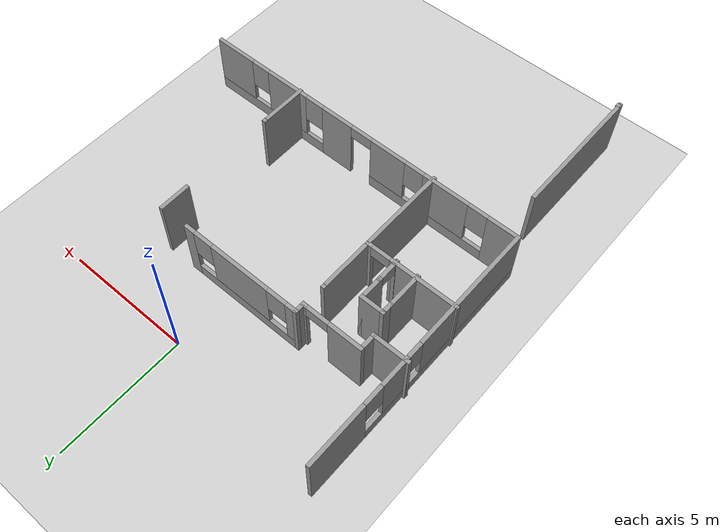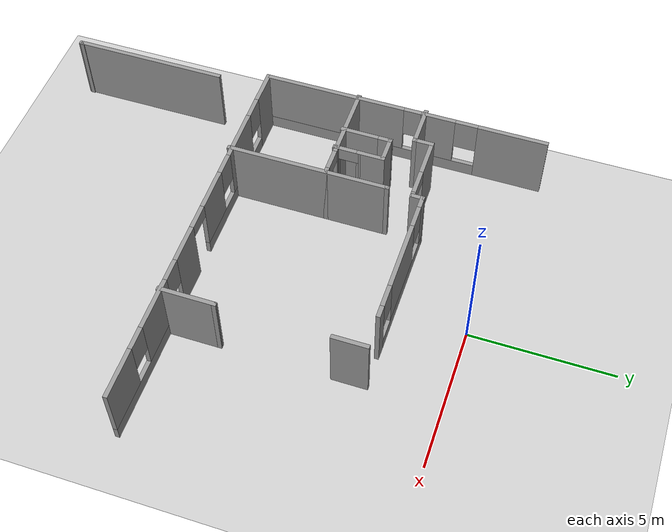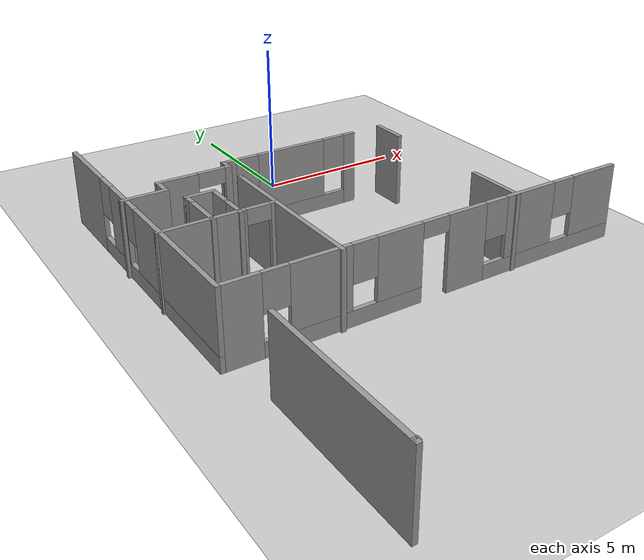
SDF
<sdf version="1.7">
 <world name="default">
  <model name="ground_plane">
   <static>1</static>
   <link name="link">
    <collision name="collision">
     <geometry><plane><normal>0 0 1</normal><size>100 100</size></plane></geometry>
     <surface>
      <contact><collide_bitmask>65535</collide_bitmask></contact>
      <friction><ode><mu>100</mu><mu2>50</mu2></ode></friction>
     </surface>
    </collision>
    <visual name="visual">
     <cast_shadows>0</cast_shadows>
     <geometry><plane><normal>0 0 1</normal><size>100 100</size></plane></geometry>
     <material>
      <script><uri>file://media/materials/scripts/gazebo.material</uri><name>Gazebo/Grey</name></script>
     </material>
    </visual>
   </link>
  </model>
  <model name="Floorplan6">
   <pose>0.09299 -3.7406 0 0 -0 0</pose>
   <link name="Wall_1">
    <pose>-6.79953 -0.482372 0 0 -0 -1.5708</pose>
    <visual name="Wall_1_Visual_0">
     <pose>-3.88959 0 1.25 0 -0 0</pose>
     <geometry><box><size>2.47081 0.15 2.5</size></box></geometry>
     <material>
      <script><uri>file://media/materials/scripts/gazebo.material</uri><name>Gazebo/Grey</name></script>
      <ambient>1 1 1 1</ambient>
     </material>
     <meta><layer>0</layer></meta>
    </visual>
    <collision name="Wall_1_Collision_0">
     <geometry><box><size>2.47081 0.15 2.5</size></box></geometry>
     <pose>-3.88959 0 1.25 0 -0 0</pose>
    </collision>
    <visual name="Wall_1_Visual_1">
     <pose>1.23541 0 0.25 0 -0 0</pose>
     <geometry><box><size>7.77919 0.15 0.5</size></box></geometry>
     <material>
      <script><uri>file://media/materials/scripts/gazebo.material</uri><name>Gazebo/Grey</name></script>
      <ambient>1 1 1 1</ambient>
     </material>
     <meta><layer>0</layer></meta>
    </visual>
    <collision name="Wall_1_Collision_1">
     <geometry><box><size>7.77919 0.15 0.5</size></box></geometry>
     <pose>1.23541 0 0.25 0 -0 0</pose>
    </collision>
    <visual name="Wall_1_Visual_2">
     <pose>-1.23648 0 1.5 0 -0 0</pose>
     <geometry><box><size>1.23542 0.15 2</size></box></geometry>
     <material>
      <script><uri>file://media/materials/scripts/gazebo.material</uri><name>Gazebo/Grey</name></script>
      <ambient>1 1 1 1</ambient>
     </material>
     <meta><layer>0</layer></meta>
    </visual>
    <collision name="Wall_1_Collision_2">
     <geometry><box><size>1.23542 0.15 2</size></box></geometry>
     <pose>-1.23648 0 1.5 0 -0 0</pose>
    </collision>
    <visual name="Wall_1_Visual_3">
     <pose>2.5606 0 1.5 0 -0 0</pose>
     <geometry><box><size>5.12881 0.15 2</size></box></geometry>
     <material>
      <script><uri>file://media/materials/scripts/gazebo.material</uri><name>Gazebo/Grey</name></script>
      <ambient>1 1 1 1</ambient>
     </material>
     <meta><layer>0</layer></meta>
    </visual>
    <collision name="Wall_1_Collision_3">
     <geometry><box><size>5.12881 0.15 2</size></box></geometry>
     <pose>2.5606 0 1.5 0 -0 0</pose>
    </collision>
    <visual name="Wall_1_Visual_4">
     <pose>-2.25419 0 1.9 0 -0 0</pose>
     <geometry><box><size>0.8 0.15 1.2</size></box></geometry>
     <material>
      <script><uri>file://media/materials/scripts/gazebo.material</uri><name>Gazebo/Grey</name></script>
      <ambient>1 1 1 1</ambient>
     </material>
     <meta><layer>0</layer></meta>
    </visual>
    <collision name="Wall_1_Collision_4">
     <geometry><box><size>0.8 0.15 1.2</size></box></geometry>
     <pose>-2.25419 0 1.9 0 -0 0</pose>
    </collision>
    <visual name="Wall_1_Visual_5">
     <pose>-0.311291 0 1.9 0 -0 0</pose>
     <geometry><box><size>0.614962 0.15 1.2</size></box></geometry>
     <material>
      <script><uri>file://media/materials/scripts/gazebo.material</uri><name>Gazebo/Grey</name></script>
      <ambient>1 1 1 1</ambient>
     </material>
     <meta><layer>0</layer></meta>
    </visual>
    <collision name="Wall_1_Collision_5">
     <geometry><box><size>0.614962 0.15 1.2</size></box></geometry>
     <pose>-0.311291 0 1.9 0 -0 0</pose>
    </collision>
   </link>
   <link name="Wall_10">
    <collision name="Wall_10_Collision">
     <geometry><box><size>0.5 0.15 2.5</size></box></geometry>
     <pose>0 0 1.25 0 -0 0</pose>
    </collision>
    <visual name="Wall_10_Visual">
     <pose>0 0 1.25 0 -0 0</pose>
     <geometry><box><size>0.5 0.15 2.5</size></box></geometry>
     <material>
      <script><uri>file://media/materials/scripts/gazebo.material</uri><name>Gazebo/Grey</name></script>
      <ambient>1 1 1 1</ambient>
     </material>
     <meta><layer>0</layer></meta>
    </visual>
    <pose>-3.19953 1.04263 0 0 -0 -1.5708</pose>
   </link>
   <link name="Wall_11">
    <pose>-4.37453 0.867628 0 0 -0 3.14159</pose>
    <visual name="Wall_11_Visual_0">
     <pose>-1.13466 0 1.25 0 -0 0</pose>
     <geometry><box><size>0.230674 0.15 2.5</size></box></geometry>
     <material>
      <script><uri>file://media/materials/scripts/gazebo.material</uri><name>Gazebo/Grey</name></script>
      <ambient>1 1 1 1</ambient>
     </material>
     <meta><layer>0</layer></meta>
    </visual>
    <collision name="Wall_11_Collision_0">
     <geometry><box><size>0.230674 0.15 2.5</size></box></geometry>
     <pose>-1.13466 0 1.25 0 -0 0</pose>
    </collision>
    <visual name="Wall_11_Visual_1">
     <pose>0.565337 0 1.25 0 -0 0</pose>
     <geometry><box><size>1.36933 0.15 2.5</size></box></geometry>
     <material>
      <script><uri>file://media/materials/scripts/gazebo.material</uri><name>Gazebo/Grey</name></script>
      <ambient>1 1 1 1</ambient>
     </material>
     <meta><layer>0</layer></meta>
    </visual>
    <collision name="Wall_11_Collision_1">
     <geometry><box><size>1.36933 0.15 2.5</size></box></geometry>
     <pose>0.565337 0 1.25 0 -0 0</pose>
    </collision>
    <visual name="Wall_11_Visual_2">
     <pose>-0.569326 0 2.25 0 -0 0</pose>
     <geometry><box><size>0.9 0.15 0.5</size></box></geometry>
     <material>
      <script><uri>file://media/materials/scripts/gazebo.material</uri><name>Gazebo/Grey</name></script>
      <ambient>1 1 1 1</ambient>
     </material>
     <meta><layer>0</layer></meta>
    </visual>
    <collision name="Wall_11_Collision_2">
     <geometry><box><size>0.9 0.15 0.5</size></box></geometry>
     <pose>-0.569326 0 2.25 0 -0 0</pose>
    </collision>
   </link>
   <link name="Wall_12">
    <collision name="Wall_12_Collision">
     <geometry><box><size>0.75 0.15 2.5</size></box></geometry>
     <pose>0 0 1.25 0 -0 0</pose>
    </collision>
    <visual name="Wall_12_Visual">
     <pose>0 0 1.25 0 -0 0</pose>
     <geometry><box><size>0.75 0.15 2.5</size></box></geometry>
     <material>
      <script><uri>file://media/materials/scripts/gazebo.material</uri><name>Gazebo/Grey</name></script>
      <ambient>1 1 1 1</ambient>
     </material>
     <meta><layer>0</layer></meta>
    </visual>
    <pose>-5.54953 0.567628 0 0 -0 -1.5708</pose>
   </link>
   <link name="Wall_13">
    <collision name="Wall_13_Collision">
     <geometry><box><size>1.5 0.15 2.5</size></box></geometry>
     <pose>0 0 1.25 0 -0 0</pose>
    </collision>
    <visual name="Wall_13_Visual">
     <pose>0 0 1.25 0 -0 0</pose>
     <geometry><box><size>1.5 0.15 2.5</size></box></geometry>
     <material>
      <script><uri>file://media/materials/scripts/gazebo.material</uri><name>Gazebo/Grey</name></script>
      <ambient>1 1 1 1</ambient>
     </material>
     <meta><layer>0</layer></meta>
    </visual>
    <pose>-6.22453 0.267628 0 0 -0 3.14159</pose>
   </link>
   <link name="Wall_14">
    <collision name="Wall_14_Collision">
     <geometry><box><size>0.15 0.15 2.5</size></box></geometry>
     <pose>0 0 1.25 0 -0 0</pose>
    </collision>
    <visual name="Wall_14_Visual">
     <pose>0 0 1.25 0 -0 0</pose>
     <geometry><box><size>0.15 0.15 2.5</size></box></geometry>
     <material>
      <script><uri>file://media/materials/scripts/gazebo.material</uri><name>Gazebo/Grey</name></script>
      <ambient>1 1 1 1</ambient>
     </material>
     <meta><layer>0</layer></meta>
    </visual>
    <pose>-6.89953 0.267628 0 0 -0 0</pose>
   </link>
   <link name="Wall_16">
    <collision name="Wall_16_Collision">
     <geometry><box><size>5.5 0.15 2.5</size></box></geometry>
     <pose>0 0 1.25 0 -0 0</pose>
    </collision>
    <visual name="Wall_16_Visual">
     <pose>0 0 1.25 0 -0 0</pose>
     <geometry><box><size>5.5 0.15 2.5</size></box></geometry>
     <material>
      <script><uri>file://media/materials/scripts/gazebo.material</uri><name>Gazebo/Grey</name></script>
      <ambient>1 1 1 1</ambient>
     </material>
     <meta><layer>0</layer></meta>
    </visual>
    <pose>-6.25348 -9.91858 0 0 -0 -1.5708</pose>
   </link>
   <link name="Wall_17">
    <collision name="Wall_17_Collision">
     <geometry><box><size>0.15 0.15 2.5</size></box></geometry>
     <pose>0 0 1.25 0 -0 0</pose>
    </collision>
    <visual name="Wall_17_Visual">
     <pose>0 0 1.25 0 -0 0</pose>
     <geometry><box><size>0.15 0.15 2.5</size></box></geometry>
     <material>
      <script><uri>file://media/materials/scripts/gazebo.material</uri><name>Gazebo/Grey</name></script>
      <ambient>1 1 1 1</ambient>
     </material>
     <meta><layer>0</layer></meta>
    </visual>
    <pose>-6.22423 -12.5351 0 0 -0 0</pose>
   </link>
   <link name="Wall_19">
    <collision name="Wall_19_Collision">
     <geometry><box><size>5.75 0.15 2.5</size></box></geometry>
     <pose>0 0 1.25 0 -0 0</pose>
    </collision>
    <visual name="Wall_19_Visual">
     <pose>0 0 1.25 0 -0 0</pose>
     <geometry><box><size>5.75 0.15 2.5</size></box></geometry>
     <material>
      <script><uri>file://media/materials/scripts/gazebo.material</uri><name>Gazebo/Grey</name></script>
      <ambient>1 1 1 1</ambient>
     </material>
     <meta><layer>0</layer></meta>
    </visual>
    <pose>-3.25626 -2.81943 0 0 -0 1.5708</pose>
   </link>
   <link name="Wall_2">
    <pose>0.000472 -5.53237 0 0 -0 0</pose>
    <visual name="Wall_2_Visual_0">
     <pose>-6.24139 0 1.25 0 -0 0</pose>
     <geometry><box><size>1.26723 0.15 2.5</size></box></geometry>
     <material>
      <script><uri>file://media/materials/scripts/gazebo.material</uri><name>Gazebo/Grey</name></script>
      <ambient>1 1 1 1</ambient>
     </material>
     <meta><layer>0</layer></meta>
    </visual>
    <collision name="Wall_2_Collision_0">
     <geometry><box><size>1.26723 0.15 2.5</size></box></geometry>
     <pose>-6.24139 0 1.25 0 -0 0</pose>
    </collision>
    <visual name="Wall_2_Visual_1">
     <pose>0.98447 0 1.25 0 -0 0</pose>
     <geometry><box><size>1.36771 0.15 2.5</size></box></geometry>
     <material>
      <script><uri>file://media/materials/scripts/gazebo.material</uri><name>Gazebo/Grey</name></script>
      <ambient>1 1 1 1</ambient>
     </material>
     <meta><layer>0</layer></meta>
    </visual>
    <collision name="Wall_2_Collision_1">
     <geometry><box><size>1.36771 0.15 2.5</size></box></geometry>
     <pose>0.98447 0 1.25 0 -0 0</pose>
    </collision>
    <visual name="Wall_2_Visual_2">
     <pose>-3.10358 0 0.25 0 -0 0</pose>
     <geometry><box><size>5.00839 0.15 0.5</size></box></geometry>
     <material>
      <script><uri>file://media/materials/scripts/gazebo.material</uri><name>Gazebo/Grey</name></script>
      <ambient>1 1 1 1</ambient>
     </material>
     <meta><layer>0</layer></meta>
    </visual>
    <collision name="Wall_2_Collision_2">
     <geometry><box><size>5.00839 0.15 0.5</size></box></geometry>
     <pose>-3.10358 0 0.25 0 -0 0</pose>
    </collision>
    <visual name="Wall_2_Visual_3">
     <pose>4.27166 0 0.25 0 -0 0</pose>
     <geometry><box><size>5.20668 0.15 0.5</size></box></geometry>
     <material>
      <script><uri>file://media/materials/scripts/gazebo.material</uri><name>Gazebo/Grey</name></script>
      <ambient>1 1 1 1</ambient>
     </material>
     <meta><layer>0</layer></meta>
    </visual>
    <collision name="Wall_2_Collision_3">
     <geometry><box><size>5.20668 0.15 0.5</size></box></geometry>
     <pose>4.27166 0 0.25 0 -0 0</pose>
    </collision>
    <visual name="Wall_2_Visual_4">
     <pose>-3.86128 0 1.5 0 -0 0</pose>
     <geometry><box><size>1.89299 0.15 2</size></box></geometry>
     <material>
      <script><uri>file://media/materials/scripts/gazebo.material</uri><name>Gazebo/Grey</name></script>
      <ambient>1 1 1 1</ambient>
     </material>
     <meta><layer>0</layer></meta>
    </visual>
    <collision name="Wall_2_Collision_4">
     <geometry><box><size>1.89299 0.15 2</size></box></geometry>
     <pose>-3.86128 0 1.5 0 -0 0</pose>
    </collision>
    <visual name="Wall_2_Visual_5">
     <pose>-1.35708 0 1.5 0 -0 0</pose>
     <geometry><box><size>1.5154 0.15 2</size></box></geometry>
     <material>
      <script><uri>file://media/materials/scripts/gazebo.material</uri><name>Gazebo/Grey</name></script>
      <ambient>1 1 1 1</ambient>
     </material>
     <meta><layer>0</layer></meta>
    </visual>
    <collision name="Wall_2_Collision_5">
     <geometry><box><size>1.5154 0.15 2</size></box></geometry>
     <pose>-1.35708 0 1.5 0 -0 0</pose>
    </collision>
    <visual name="Wall_2_Visual_6">
     <pose>-1.35708 0 1.5 0 -0 0</pose>
     <geometry><box><size>1.5154 0.15 2</size></box></geometry>
     <material>
      <script><uri>file://media/materials/scripts/gazebo.material</uri><name>Gazebo/Grey</name></script>
      <ambient>1 1 1 1</ambient>
     </material>
     <meta><layer>0</layer></meta>
    </visual>
    <collision name="Wall_2_Collision_6">
     <geometry><box><size>1.5154 0.15 2</size></box></geometry>
     <pose>-1.35708 0 1.5 0 -0 0</pose>
    </collision>
    <visual name="Wall_2_Visual_7">
     <pose>3.39809 0 1.5 0 -0 0</pose>
     <geometry><box><size>1.85954 0.15 2</size></box></geometry>
     <material>
      <script><uri>file://media/materials/scripts/gazebo.material</uri><name>Gazebo/Grey</name></script>
      <ambient>1 1 1 1</ambient>
     </material>
     <meta><layer>0</layer></meta>
    </visual>
    <collision name="Wall_2_Collision_7">
     <geometry><box><size>1.85954 0.15 2</size></box></geometry>
     <pose>3.39809 0 1.5 0 -0 0</pose>
    </collision>
    <visual name="Wall_2_Visual_8">
     <pose>6.00143 0 1.5 0 -0 0</pose>
     <geometry><box><size>1.74714 0.15 2</size></box></geometry>
     <material>
      <script><uri>file://media/materials/scripts/gazebo.material</uri><name>Gazebo/Grey</name></script>
      <ambient>1 1 1 1</ambient>
     </material>
     <meta><layer>0</layer></meta>
    </visual>
    <collision name="Wall_2_Collision_8">
     <geometry><box><size>1.74714 0.15 2</size></box></geometry>
     <pose>6.00143 0 1.5 0 -0 0</pose>
    </collision>
    <visual name="Wall_2_Visual_9">
     <pose>-5.20777 0 1.9 0 -0 0</pose>
     <geometry><box><size>0.8 0.15 1.2</size></box></geometry>
     <material>
      <script><uri>file://media/materials/scripts/gazebo.material</uri><name>Gazebo/Grey</name></script>
      <ambient>1 1 1 1</ambient>
     </material>
     <meta><layer>0</layer></meta>
    </visual>
    <collision name="Wall_2_Collision_9">
     <geometry><box><size>0.8 0.15 1.2</size></box></geometry>
     <pose>-5.20777 0 1.9 0 -0 0</pose>
    </collision>
    <visual name="Wall_2_Visual_10">
     <pose>2.06832 0 1.9 0 -0 0</pose>
     <geometry><box><size>0.8 0.15 1.2</size></box></geometry>
     <material>
      <script><uri>file://media/materials/scripts/gazebo.material</uri><name>Gazebo/Grey</name></script>
      <ambient>1 1 1 1</ambient>
     </material>
     <meta><layer>0</layer></meta>
    </visual>
    <collision name="Wall_2_Collision_10">
     <geometry><box><size>0.8 0.15 1.2</size></box></geometry>
     <pose>2.06832 0 1.9 0 -0 0</pose>
    </collision>
    <visual name="Wall_2_Visual_11">
     <pose>-2.51478 0 1.9 0 -0 0</pose>
     <geometry><box><size>0.8 0.15 1.2</size></box></geometry>
     <material>
      <script><uri>file://media/materials/scripts/gazebo.material</uri><name>Gazebo/Grey</name></script>
      <ambient>1 1 1 1</ambient>
     </material>
     <meta><layer>0</layer></meta>
    </visual>
    <collision name="Wall_2_Collision_11">
     <geometry><box><size>0.8 0.15 1.2</size></box></geometry>
     <pose>-2.51478 0 1.9 0 -0 0</pose>
    </collision>
    <visual name="Wall_2_Visual_12">
     <pose>4.72786 0 1.9 0 -0 0</pose>
     <geometry><box><size>0.8 0.15 1.2</size></box></geometry>
     <material>
      <script><uri>file://media/materials/scripts/gazebo.material</uri><name>Gazebo/Grey</name></script>
      <ambient>1 1 1 1</ambient>
     </material>
     <meta><layer>0</layer></meta>
    </visual>
    <collision name="Wall_2_Collision_12">
     <geometry><box><size>0.8 0.15 1.2</size></box></geometry>
     <pose>4.72786 0 1.9 0 -0 0</pose>
    </collision>
    <visual name="Wall_2_Visual_13">
     <pose>-0.149383 0 2.25 0 -0 0</pose>
     <geometry><box><size>0.9 0.15 0.5</size></box></geometry>
     <material>
      <script><uri>file://media/materials/scripts/gazebo.material</uri><name>Gazebo/Grey</name></script>
      <ambient>1 1 1 1</ambient>
     </material>
     <meta><layer>0</layer></meta>
    </visual>
    <collision name="Wall_2_Collision_13">
     <geometry><box><size>0.9 0.15 0.5</size></box></geometry>
     <pose>-0.149383 0 2.25 0 -0 0</pose>
    </collision>
    <visual name="Wall_2_Visual_14">
     <pose>-0.149383 0 2.25 0 -0 0</pose>
     <geometry><box><size>0.9 0.15 0.5</size></box></geometry>
     <material>
      <script><uri>file://media/materials/scripts/gazebo.material</uri><name>Gazebo/Grey</name></script>
      <ambient>1 1 1 1</ambient>
     </material>
     <meta><layer>0</layer></meta>
    </visual>
    <collision name="Wall_2_Collision_14">
     <geometry><box><size>0.9 0.15 0.5</size></box></geometry>
     <pose>-0.149383 0 2.25 0 -0 0</pose>
    </collision>
   </link>
   <link name="Wall_20">
    <collision name="Wall_20_Collision">
     <geometry><box><size>0.15 0.15 2.5</size></box></geometry>
     <pose>0 0 1.25 0 -0 0</pose>
    </collision>
    <visual name="Wall_20_Visual">
     <pose>0 0 1.25 0 -0 0</pose>
     <geometry><box><size>0.15 0.15 2.5</size></box></geometry>
     <material>
      <script><uri>file://media/materials/scripts/gazebo.material</uri><name>Gazebo/Grey</name></script>
      <ambient>1 1 1 1</ambient>
     </material>
     <meta><layer>0</layer></meta>
    </visual>
    <pose>-3.25626 -0.019432 0 0 -0 0</pose>
   </link>
   <link name="Wall_22">
    <pose>-5.05626 -2.16734 0 0 -0 3.14159</pose>
    <visual name="Wall_22_Visual_0">
     <pose>-1.74129 0 1.25 0 -0 0</pose>
     <geometry><box><size>0.267415 0.15 2.5</size></box></geometry>
     <material>
      <script><uri>file://media/materials/scripts/gazebo.material</uri><name>Gazebo/Grey</name></script>
      <ambient>1 1 1 1</ambient>
     </material>
     <meta><layer>0</layer></meta>
    </visual>
    <collision name="Wall_22_Collision_0">
     <geometry><box><size>0.267415 0.15 2.5</size></box></geometry>
     <pose>-1.74129 0 1.25 0 -0 0</pose>
    </collision>
    <visual name="Wall_22_Visual_1">
     <pose>0.516421 0 1.25 0 -0 0</pose>
     <geometry><box><size>2.71716 0.15 2.5</size></box></geometry>
     <material>
      <script><uri>file://media/materials/scripts/gazebo.material</uri><name>Gazebo/Grey</name></script>
      <ambient>1 1 1 1</ambient>
     </material>
     <meta><layer>0</layer></meta>
    </visual>
    <collision name="Wall_22_Collision_1">
     <geometry><box><size>2.71716 0.15 2.5</size></box></geometry>
     <pose>0.516421 0 1.25 0 -0 0</pose>
    </collision>
    <visual name="Wall_22_Visual_2">
     <pose>-1.22487 0 2.25 0 -0 0</pose>
     <geometry><box><size>0.765427 0.15 0.5</size></box></geometry>
     <material>
      <script><uri>file://media/materials/scripts/gazebo.material</uri><name>Gazebo/Grey</name></script>
      <ambient>1 1 1 1</ambient>
     </material>
     <meta><layer>0</layer></meta>
    </visual>
    <collision name="Wall_22_Collision_2">
     <geometry><box><size>0.765427 0.15 0.5</size></box></geometry>
     <pose>-1.22487 0 2.25 0 -0 0</pose>
    </collision>
   </link>
   <link name="Wall_23">
    <collision name="Wall_23_Collision">
     <geometry><box><size>0.15 0.15 2.5</size></box></geometry>
     <pose>0 0 1.25 0 -0 0</pose>
    </collision>
    <visual name="Wall_23_Visual">
     <pose>0 0 1.25 0 -0 0</pose>
     <geometry><box><size>0.15 0.15 2.5</size></box></geometry>
     <material>
      <script><uri>file://media/materials/scripts/gazebo.material</uri><name>Gazebo/Grey</name></script>
      <ambient>1 1 1 1</ambient>
     </material>
     <meta><layer>0</layer></meta>
    </visual>
    <pose>-6.85626 -2.16734 0 0 -0 0</pose>
   </link>
   <link name="Wall_25">
    <collision name="Wall_25_Collision">
     <geometry><box><size>1.5 0.15 2.5</size></box></geometry>
     <pose>0 0 1.25 0 -0 0</pose>
    </collision>
    <visual name="Wall_25_Visual">
     <pose>0 0 1.25 0 -0 0</pose>
     <geometry><box><size>1.5 0.15 2.5</size></box></geometry>
     <material>
      <script><uri>file://media/materials/scripts/gazebo.material</uri><name>Gazebo/Grey</name></script>
      <ambient>1 1 1 1</ambient>
     </material>
     <meta><layer>0</layer></meta>
    </visual>
    <pose>-5.26023 -1.55085 0 0 -0 1.5708</pose>
   </link>
   <link name="Wall_26">
    <collision name="Wall_26_Collision">
     <geometry><box><size>0.5 0.15 2.5</size></box></geometry>
     <pose>0 0 1.25 0 -0 0</pose>
    </collision>
    <visual name="Wall_26_Visual">
     <pose>0 0 1.25 0 -0 0</pose>
     <geometry><box><size>0.5 0.15 2.5</size></box></geometry>
     <material>
      <script><uri>file://media/materials/scripts/gazebo.material</uri><name>Gazebo/Grey</name></script>
      <ambient>1 1 1 1</ambient>
     </material>
     <meta><layer>0</layer></meta>
    </visual>
    <pose>-5.26023 -0.700848 0 0 -0 1.5708</pose>
   </link>
   <link name="Wall_27">
    <collision name="Wall_27_Collision">
     <geometry><box><size>1 0.15 2.5</size></box></geometry>
     <pose>0 0 1.25 0 -0 0</pose>
    </collision>
    <visual name="Wall_27_Visual">
     <pose>0 0 1.25 0 -0 0</pose>
     <geometry><box><size>1 0.15 2.5</size></box></geometry>
     <material>
      <script><uri>file://media/materials/scripts/gazebo.material</uri><name>Gazebo/Grey</name></script>
      <ambient>1 1 1 1</ambient>
     </material>
     <meta><layer>0</layer></meta>
    </visual>
    <pose>-4.83523 -0.525848 0 0 -0 0</pose>
   </link>
   <link name="Wall_28">
    <collision name="Wall_28_Collision">
     <geometry><box><size>1 0.15 2.5</size></box></geometry>
     <pose>0 0 1.25 0 -0 0</pose>
    </collision>
    <visual name="Wall_28_Visual">
     <pose>0 0 1.25 0 -0 0</pose>
     <geometry><box><size>1 0.15 2.5</size></box></geometry>
     <material>
      <script><uri>file://media/materials/scripts/gazebo.material</uri><name>Gazebo/Grey</name></script>
      <ambient>1 1 1 1</ambient>
     </material>
     <meta><layer>0</layer></meta>
    </visual>
    <pose>-4.41023 -0.950848 0 0 -0 -1.5708</pose>
   </link>
   <link name="Wall_29">
    <pose>-4.41023 -1.80085 0 0 -0 -1.5708</pose>
    <visual name="Wall_29_Visual_0">
     <pose>-0.466347 0 1.25 0 -0 0</pose>
     <geometry><box><size>0.067305 0.15 2.5</size></box></geometry>
     <material>
      <script><uri>file://media/materials/scripts/gazebo.material</uri><name>Gazebo/Grey</name></script>
      <ambient>1 1 1 1</ambient>
     </material>
     <meta><layer>0</layer></meta>
    </visual>
    <collision name="Wall_29_Collision_0">
     <geometry><box><size>0.067305 0.15 2.5</size></box></geometry>
     <pose>-0.466347 0 1.25 0 -0 0</pose>
    </collision>
    <visual name="Wall_29_Visual_1">
     <pose>0.385475 0 1.25 0 -0 0</pose>
     <geometry><box><size>0.229051 0.15 2.5</size></box></geometry>
     <material>
      <script><uri>file://media/materials/scripts/gazebo.material</uri><name>Gazebo/Grey</name></script>
      <ambient>1 1 1 1</ambient>
     </material>
     <meta><layer>0</layer></meta>
    </visual>
    <collision name="Wall_29_Collision_1">
     <geometry><box><size>0.229051 0.15 2.5</size></box></geometry>
     <pose>0.385475 0 1.25 0 -0 0</pose>
    </collision>
    <visual name="Wall_29_Visual_2">
     <pose>-0.080873 0 2.25 0 -0 0</pose>
     <geometry><box><size>0.703644 0.15 0.5</size></box></geometry>
     <material>
      <script><uri>file://media/materials/scripts/gazebo.material</uri><name>Gazebo/Grey</name></script>
      <ambient>1 1 1 1</ambient>
     </material>
     <meta><layer>0</layer></meta>
    </visual>
    <collision name="Wall_29_Collision_2">
     <geometry><box><size>0.703644 0.15 0.5</size></box></geometry>
     <pose>-0.080873 0 2.25 0 -0 0</pose>
    </collision>
   </link>
   <link name="Wall_30">
    <collision name="Wall_30_Collision">
     <geometry><box><size>0.15 0.15 2.5</size></box></geometry>
     <pose>0 0 1.25 0 -0 0</pose>
    </collision>
    <visual name="Wall_30_Visual">
     <pose>0 0 1.25 0 -0 0</pose>
     <geometry><box><size>0.15 0.15 2.5</size></box></geometry>
     <material>
      <script><uri>file://media/materials/scripts/gazebo.material</uri><name>Gazebo/Grey</name></script>
      <ambient>1 1 1 1</ambient>
     </material>
     <meta><layer>0</layer></meta>
    </visual>
    <pose>-4.41023 -2.22585 0 0 -0 0</pose>
   </link>
   <link name="Wall_32">
    <collision name="Wall_32_Collision">
     <geometry><box><size>2 0.15 2.5</size></box></geometry>
     <pose>0 0 1.25 0 -0 0</pose>
    </collision>
    <visual name="Wall_32_Visual">
     <pose>0 0 1.25 0 -0 0</pose>
     <geometry><box><size>2 0.15 2.5</size></box></geometry>
     <material>
      <script><uri>file://media/materials/scripts/gazebo.material</uri><name>Gazebo/Grey</name></script>
      <ambient>1 1 1 1</ambient>
     </material>
     <meta><layer>0</layer></meta>
    </visual>
    <pose>2.82878 -4.65055 0 0 -0 1.5708</pose>
   </link>
   <link name="Wall_33">
    <collision name="Wall_33_Collision">
     <geometry><box><size>0.15 0.15 2.5</size></box></geometry>
     <pose>0 0 1.25 0 -0 0</pose>
    </collision>
    <visual name="Wall_33_Visual">
     <pose>0 0 1.25 0 -0 0</pose>
     <geometry><box><size>0.15 0.15 2.5</size></box></geometry>
     <material>
      <script><uri>file://media/materials/scripts/gazebo.material</uri><name>Gazebo/Grey</name></script>
      <ambient>1 1 1 1</ambient>
     </material>
     <meta><layer>0</layer></meta>
    </visual>
    <pose>2.82878 -3.72555 0 0 -0 0</pose>
   </link>
   <link name="Wall_35">
    <collision name="Wall_35_Collision">
     <geometry><box><size>1.25 0.15 2.5</size></box></geometry>
     <pose>0 0 1.25 0 -0 0</pose>
    </collision>
    <visual name="Wall_35_Visual">
     <pose>0 0 1.25 0 -0 0</pose>
     <geometry><box><size>1.25 0.15 2.5</size></box></geometry>
     <material>
      <script><uri>file://media/materials/scripts/gazebo.material</uri><name>Gazebo/Grey</name></script>
      <ambient>1 1 1 1</ambient>
     </material>
     <meta><layer>0</layer></meta>
    </visual>
    <pose>2.79953 0.679182 0 0 -0 1.5708</pose>
   </link>
   <link name="Wall_6">
    <pose>-0.787903 1.21763 0 0 -0 -3.14159</pose>
    <visual name="Wall_6_Visual_0">
     <pose>-2.26952 0 1.25 0 -0 0</pose>
     <geometry><box><size>0.434279 0.15 2.5</size></box></geometry>
     <material>
      <script><uri>file://media/materials/scripts/gazebo.material</uri><name>Gazebo/Grey</name></script>
      <ambient>1 1 1 1</ambient>
     </material>
     <meta><layer>0</layer></meta>
    </visual>
    <collision name="Wall_6_Collision_0">
     <geometry><box><size>0.434279 0.15 2.5</size></box></geometry>
     <pose>-2.26952 0 1.25 0 -0 0</pose>
    </collision>
    <visual name="Wall_6_Visual_1">
     <pose>0.217139 0 0.25 0 -0 0</pose>
     <geometry><box><size>4.53904 0.15 0.5</size></box></geometry>
     <material>
      <script><uri>file://media/materials/scripts/gazebo.material</uri><name>Gazebo/Grey</name></script>
      <ambient>1 1 1 1</ambient>
     </material>
     <meta><layer>0</layer></meta>
    </visual>
    <collision name="Wall_6_Collision_1">
     <geometry><box><size>4.53904 0.15 0.5</size></box></geometry>
     <pose>0.217139 0 0.25 0 -0 0</pose>
    </collision>
    <visual name="Wall_6_Visual_2">
     <pose>-0.02153 0 1.5 0 -0 0</pose>
     <geometry><box><size>2.4617 0.15 2</size></box></geometry>
     <material>
      <script><uri>file://media/materials/scripts/gazebo.material</uri><name>Gazebo/Grey</name></script>
      <ambient>1 1 1 1</ambient>
     </material>
     <meta><layer>0</layer></meta>
    </visual>
    <collision name="Wall_6_Collision_2">
     <geometry><box><size>2.4617 0.15 2</size></box></geometry>
     <pose>-0.02153 0 1.5 0 -0 0</pose>
    </collision>
    <visual name="Wall_6_Visual_3">
     <pose>2.24799 0 1.5 0 -0 0</pose>
     <geometry><box><size>0.47734 0.15 2</size></box></geometry>
     <material>
      <script><uri>file://media/materials/scripts/gazebo.material</uri><name>Gazebo/Grey</name></script>
      <ambient>1 1 1 1</ambient>
     </material>
     <meta><layer>0</layer></meta>
    </visual>
    <collision name="Wall_6_Collision_3">
     <geometry><box><size>0.47734 0.15 2</size></box></geometry>
     <pose>2.24799 0 1.5 0 -0 0</pose>
    </collision>
    <visual name="Wall_6_Visual_4">
     <pose>-1.65238 0 1.9 0 -0 0</pose>
     <geometry><box><size>0.8 0.15 1.2</size></box></geometry>
     <material>
      <script><uri>file://media/materials/scripts/gazebo.material</uri><name>Gazebo/Grey</name></script>
      <ambient>1 1 1 1</ambient>
     </material>
     <meta><layer>0</layer></meta>
    </visual>
    <collision name="Wall_6_Collision_4">
     <geometry><box><size>0.8 0.15 1.2</size></box></geometry>
     <pose>-1.65238 0 1.9 0 -0 0</pose>
    </collision>
    <visual name="Wall_6_Visual_5">
     <pose>1.60932 0 1.9 0 -0 0</pose>
     <geometry><box><size>0.8 0.15 1.2</size></box></geometry>
     <material>
      <script><uri>file://media/materials/scripts/gazebo.material</uri><name>Gazebo/Grey</name></script>
      <ambient>1 1 1 1</ambient>
     </material>
     <meta><layer>0</layer></meta>
    </visual>
    <collision name="Wall_6_Collision_5">
     <geometry><box><size>0.8 0.15 1.2</size></box></geometry>
     <pose>1.60932 0 1.9 0 -0 0</pose>
    </collision>
   </link>
   <static>1</static>
  </model>
 </world>
</sdf>
